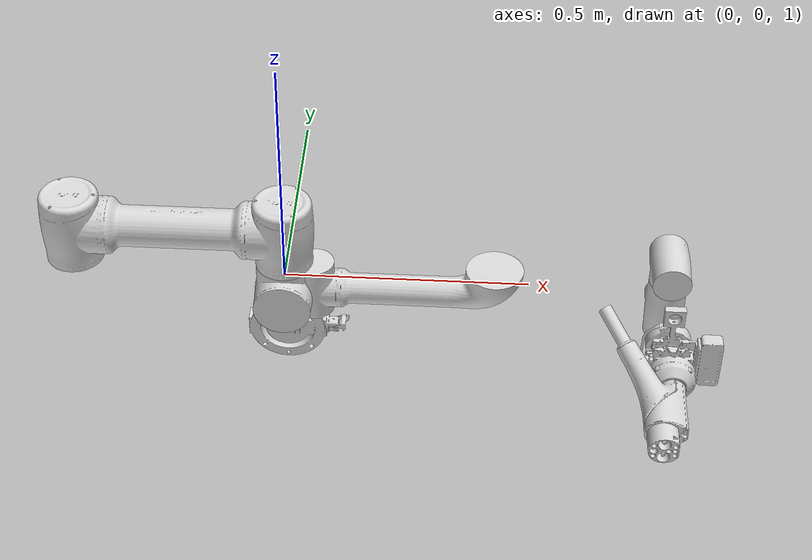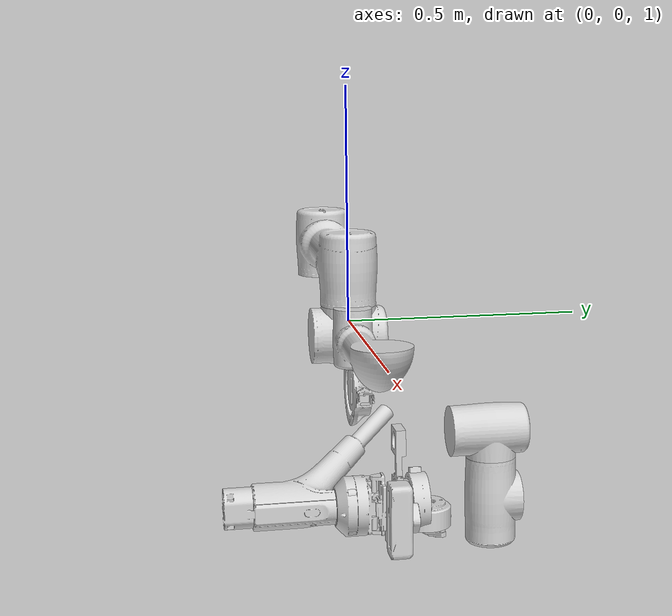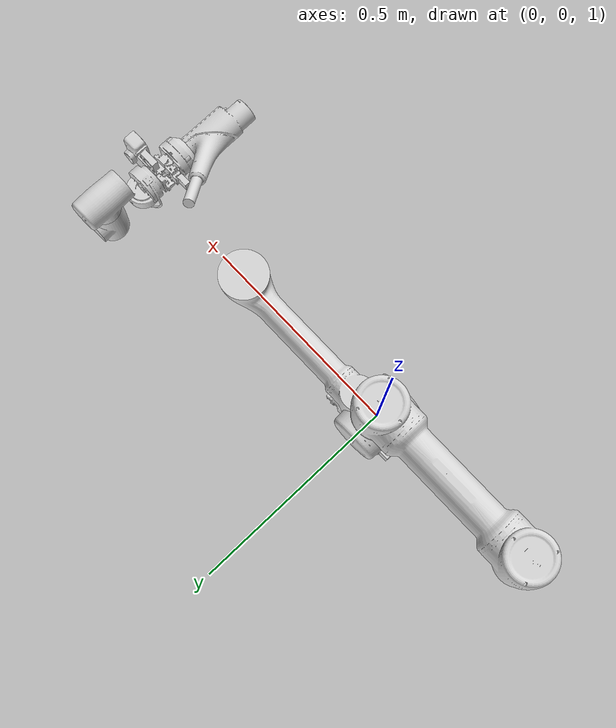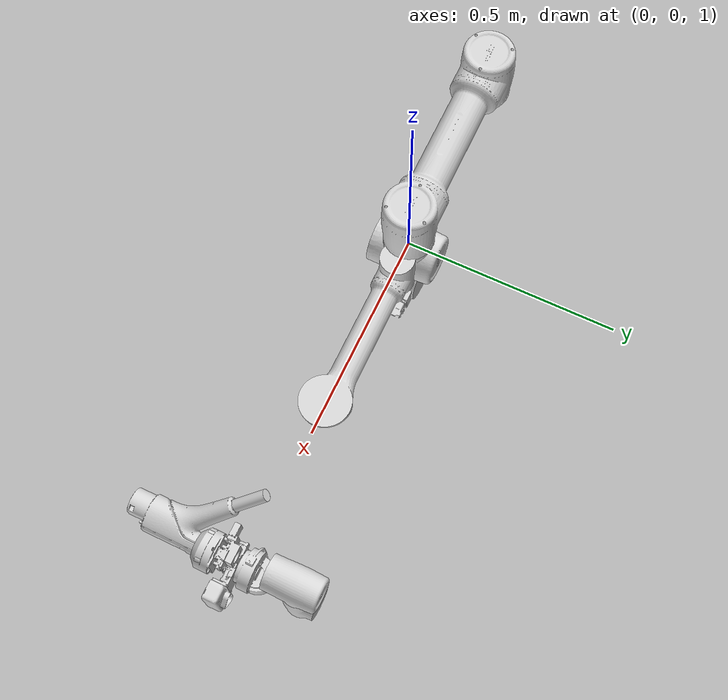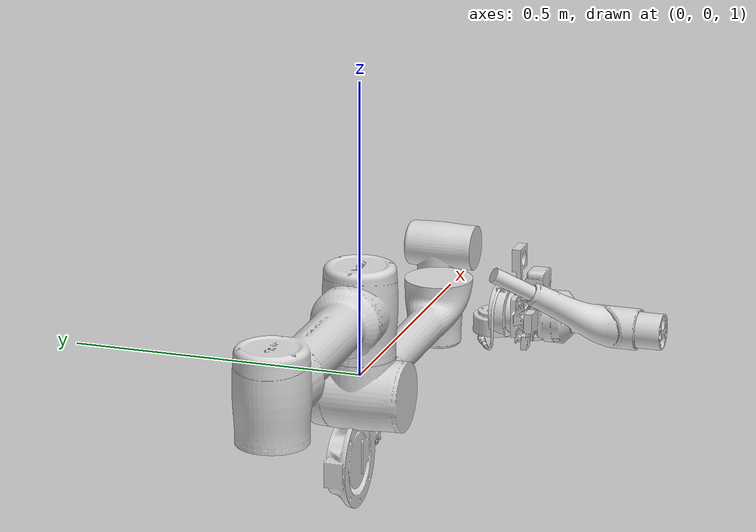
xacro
<?xml version="1.0"?>
<robot xmlns:xacro="http://www.ros.org/wiki/xacro" name="jaka_zu5">
    <xacro:arg name="initial_positions_file" default="initial_positions.yaml" />

    <xacro:include filename="$(find jaka_description)/urdf/gazebo_jaka_zu5.urdf" />

    <gazebo reference="Link_0">
        <self_collide>false</self_collide>
        <gravity>false</gravity>
    </gazebo>
    <gazebo reference="Link_1">
        <material>Gazebo/White</material>
        <self_collide>false</self_collide>
        <gravity>false</gravity>
    </gazebo>
    <gazebo reference="Link_2">
        <material>Gazebo/White</material>
        <gravity>false</gravity>
    </gazebo>
    <gazebo reference="Link_3">
        <material>Gazebo/White</material>
        <gravity>false</gravity>
    </gazebo>
    <gazebo reference="Link_4">
        <material>Gazebo/White</material>
        <gravity>false</gravity>
    </gazebo>
    <gazebo reference="Link_5">
        <material>Gazebo/White</material>
        <gravity>false</gravity>
    </gazebo>
    <gazebo reference="Link_6">
        <material>Gazebo/White</material>
        <gravity>false</gravity>
    </gazebo>

    <gazebo>
        <is_static>true</is_static>
        <self_collide>true</self_collide>
    </gazebo>

    <ros2_control name="GazeboSystem" type="system">
        <hardware>
            <plugin>gazebo_ros2_control/GazeboSystem</plugin>
        </hardware>
        <joint name="joint_1">
            <command_interface name="position"/>
            <state_interface name="position">
                <param name="initial_value">-3.61</param>
            </state_interface>
            <state_interface name="velocity"/>
        </joint>
        <joint name="joint_2">
            <command_interface name="position"/>
            <state_interface name="position">
                <param name="initial_value">1.30</param>
            </state_interface>
            <state_interface name="velocity"/>
        </joint>
        <joint name="joint_3">
            <command_interface name="position"/>
            <state_interface name="position">
                <param name="initial_value">2.33</param>
            </state_interface>
            <state_interface name="velocity"/>
        </joint>
        <joint name="joint_4">
            <command_interface name="position"/>
            <state_interface name="position">
                <param name="initial_value">3.13</param>
            </state_interface>
            <state_interface name="velocity"/>
        </joint>
        <joint name="joint_5">
            <command_interface name="position"/>
            <state_interface name="position">
                <param name="initial_value">-4.90</param>
            </state_interface>
            <state_interface name="velocity"/>
        </joint>
        <joint name="joint_6">
            <command_interface name="position"/>
            <state_interface name="position">
                <param name="initial_value">1.38</param>
            </state_interface>
            <state_interface name="velocity"/>
        </joint>
    </ros2_control>
    <gazebo>
        <plugin filename="libgazebo_ros2_control.so" name="gazebo_ros2_control">
            <parameters>$(find jaka_zu5_moveit_config)/config/ros2_controllers.yaml</parameters>
            <robot_param>robot_description</robot_param>
            <robot_param_node>robot_state_publisher</robot_param_node>
        </plugin>
    </gazebo>
</robot>

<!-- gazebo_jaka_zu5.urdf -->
<robot
  name="jaka_zu5">

  <!-- LINK -->
  <link name="world" />

  <link
    name="Link_0">
    <inertial>
      <origin
        xyz="0.00096371 8.8222E-08 0.019555"
        rpy="0 0 0" />
      <mass
        value="4.0392" />
      <inertia
        ixx="0.0048763"
        ixy="-1.8056E-07"
        ixz="2.5196E-05"
        iyy="0.0068003"
        iyz="-1.7678E-09"
        izz="0.010618" />
    </inertial>
    <visual>
      <origin
        xyz="0 0 0"
        rpy="0 0 0" />
      <geometry>
        <mesh
          filename="file://$(find jaka_description)/meshes/jaka_zu5_meshes/Link_0.STL" />
      </geometry>
      <material
        name="">
        <color
          rgba="0.84706 0.84706 0.84706 1" />
      </material>
    </visual>
    <collision>
      <origin
        xyz="0 0 0"
        rpy="0 0 0" />
      <geometry>
        <mesh
          filename="file://$(find jaka_description)/meshes/jaka_zu5_meshes/Link_0.STL" />
      </geometry>
    </collision>
  </link>
  <link
    name="Link_1">
    <inertial>
      <origin
        xyz="-2.5186E-07 0.0033226 -0.001509"
        rpy="0 0 0" />
      <mass
        value="15.135" />
      <inertia
        ixx="0.044302"
        ixy="1.5349E-07"
        ixz="-6.1966E-07"
        iyy="0.043091"
        iyz="1.4326E-05"
        izz="0.030523" />
    </inertial>
    <visual>
      <origin
        xyz="0 0 0"
        rpy="0 0 0" />
      <geometry>
        <mesh
          filename="file://$(find jaka_description)/meshes/jaka_zu5_meshes/Link_1.STL" />
      </geometry>
      <material
        name="">
        <color
          rgba="0.84706 0.84706 0.84706 1" />
      </material>
    </visual>
    <collision>
      <origin
        xyz="0 0 0"
        rpy="0 0 0" />
      <geometry>
        <mesh
          filename="file://$(find jaka_description)/meshes/jaka_zu5_meshes/Link_1.STL" />
      </geometry>
    </collision>
  </link>

  <link
    name="Link_2">
    <inertial>
      <origin
        xyz="0.215 6.4325E-09 -0.14315"
        rpy="0 0 0" />
      <mass
        value="45.847" />
      <inertia
        ixx="0.10377"
        ixy="-1.3562E-06"
        ixz="2.544E-07"
        iyy="1.5964"
        iyz="2.1509E-08"
        izz="1.5689" />
    </inertial>
    <visual>
      <origin
        xyz="0 0 0"
        rpy="0 0 0" />
      <geometry>
        <mesh
          filename="file://$(find jaka_description)/meshes/jaka_zu5_meshes/Link_2.STL" />
      </geometry>
      <material
        name="">
        <color
          rgba="0.84706 0.84706 0.84706 1" />
      </material>
    </visual>
    <collision>
      <origin
        xyz="0 0 0"
        rpy="0 0 0" />
      <geometry>
        <mesh
          filename="file://$(find jaka_description)/meshes/jaka_zu5_meshes/Link_2.STL" />
      </geometry>
    </collision>
  </link>

  <link
    name="Link_3">
    <inertial>
      <origin
        xyz="0.19087 -1.1862E-05 -0.010587"
        rpy="0 0 0" />
      <mass
        value="18.069" />
      <inertia
        ixx="0.022066"
        ixy="-3.4554E-06"
        ixz="-0.022609"
        iyy="0.41632"
        iyz="1.1508E-08"
        izz="0.41071" />
    </inertial>
    <visual>
      <origin
        xyz="0 0 0"
        rpy="0 0 0" />
      <geometry>
        <mesh
          filename="file://$(find jaka_description)/meshes/jaka_zu5_meshes/Link_3.STL" />
      </geometry>
      <material
        name="">
        <color
          rgba="0.84706 0.84706 0.84706 1" />
      </material>
    </visual>
    <collision>
      <origin
        xyz="0 0 0"
        rpy="0 0 0" />
      <geometry>
        <mesh
          filename="file://$(find jaka_description)/meshes/jaka_zu5_meshes/Link_3.STL" />
      </geometry>
    </collision>
  </link>

  <link
    name="Link_4">
    <inertial>
      <origin
        xyz="-2.1345E-06 -0.0058004 0.0026717"
        rpy="0 0 0" />
      <mass
        value="5.5525" />
      <inertia
        ixx="0.0092564"
        ixy="1.1341E-07"
        ixz="-1.2578E-08"
        iyy="0.0052251"
        iyz="-8.3499E-05"
        izz="0.0089683" />
    </inertial>
    <visual>
      <origin
        xyz="0 0 0"
        rpy="0 0 0" />
      <geometry>
        <mesh
          filename="file://$(find jaka_description)/meshes/jaka_zu5_meshes/Link_4.STL" />
      </geometry>
      <material
        name="">
        <color
          rgba="0.84706 0.84706 0.84706 1" />
      </material>
    </visual>
    <collision>
      <origin
        xyz="0 0 0"
        rpy="0 0 0" />
      <geometry>
        <mesh
          filename="file://$(find jaka_description)/meshes/jaka_zu5_meshes/Link_4.STL" />
      </geometry>
    </collision>
  </link>

  <link
    name="Link_5">
    <inertial>
      <origin
        xyz="-2.0304E-06 -0.0028889 -0.0023424"
        rpy="0 0 0" />
      <mass
        value="6.3339" />
      <inertia
        ixx="0.012993"
        ixy="-1.0764E-07"
        ixz="5.8559E-09"
        iyy="0.0058454"
        iyz="4.5426E-05"
        izz="0.0127" />
    </inertial>
    <visual>
      <origin
        xyz="0 0 0"
        rpy="0 0 0" />
      <geometry>
        <mesh
          filename="file://$(find jaka_description)/meshes/jaka_zu5_meshes/Link_5.STL" />
      </geometry>
      <material
        name="">
        <color
          rgba="0.84706 0.84706 0.84706 1" />
      </material>
    </visual>
    <collision>
      <origin
        xyz="0 0 0"
        rpy="0 0 0" />
      <geometry>
        <mesh
          filename="file://$(find jaka_description)/meshes/jaka_zu5_meshes/Link_5.STL" />
      </geometry>
    </collision>
  </link>

  <link
    name="Link_6">
    <inertial>
      <origin
        xyz="2.7652E-05 -1.3485E-05 -0.021245"
        rpy="0 0 0" />
      <mass
        value="1.4169" />
      <inertia
        ixx="0.00071853"
        ixy="-6.9778E-07"
        ixz="-6.378E-07"
        iyy="0.00072375"
        iyz="8.3072E-07"
        izz="0.0011337" />
    </inertial>
    <visual>
      <origin
        xyz="0 0 0"
        rpy="0 0 0" />
      <geometry>
        <mesh
          filename="file://$(find jaka_description)/meshes/jaka_zu5_meshes/Link_6.STL" />
      </geometry>
      <material
        name="">
        <color
          rgba="0.84706 0.84706 0.84706 1" />
      </material>
    </visual>
    <collision>
      <origin
        xyz="0 0 0"
        rpy="0 0 0" />
      <geometry>
        <mesh
          filename="file://$(find jaka_description)/meshes/jaka_zu5_meshes/Link_6.STL" />
      </geometry>
    </collision>
  </link>

  <link
    name="force_sensor">
    <inertial>
      <origin
        xyz="0 0 0.039"
        rpy="0 0 0" />
      <mass
        value="1.4169" />
      <inertia
        ixx="0.00071853"
        ixy="-6.9778E-07"
        ixz="-6.378E-07"
        iyy="0.00072375"
        iyz="8.3072E-07"
        izz="0.0011337" />
    </inertial>
    <visual>
      <origin
        xyz="0 0 0"
        rpy="0 0 0" />
      <geometry>
        <mesh
          filename="file://$(find jaka_description)/meshes/jaka_zu5_meshes/jaka_force_sensor.stl" />
      </geometry>
      <material
        name="">
        <color
          rgba="0.84706 0.84706 0.84706 1" />
      </material>
    </visual>
    <collision>
      <origin
        xyz="0 0 0"
        rpy="0 0 0" />
      <geometry>
        <mesh
          filename="file://$(find jaka_description)/meshes/jaka_zu5_meshes/jaka_force_sensor.stl" />
      </geometry>
    </collision>
  </link>

  <link
    name="quick_change">
    <inertial>
      <origin
        xyz="0 0 0.07"
        rpy="0 0 0" />
      <mass
        value="1.4169" />
      <inertia
        ixx="0.00071853"
        ixy="-6.9778E-07"
        ixz="-6.378E-07"
        iyy="0.00072375"
        iyz="8.3072E-07"
        izz="0.0011337" />
    </inertial>
    <visual>
      <origin
        xyz="0 0 0"
        rpy="0 0 0" />
      <geometry>
        <mesh
          filename="file://$(find jaka_description)/meshes/jaka_zu5_meshes/cam_qc.STL" />
      </geometry>
      <material
        name="">
        <color
          rgba="0.84706 0.84706 0.84706 1" />
      </material>
    </visual>
    <collision>
      <origin
        xyz="0 0 0"
        rpy="0 0 0" />
      <geometry>
        <mesh
          filename="file://$(find jaka_description)/meshes/jaka_zu5_meshes/cam_qc.STL" />
      </geometry>
    </collision>
  </link>

  <link
    name="with_gun">
    <inertial>
      <origin
        xyz="0 0 0.21"
        rpy="0 0 0" />
      <mass
        value="1.4169" />
      <inertia
        ixx="0.00071853"
        ixy="-6.9778E-07"
        ixz="-6.378E-07"
        iyy="0.00072375"
        iyz="8.3072E-07"
        izz="0.0011337" />
    </inertial>
    <visual>
      <origin
        xyz="0 0 0"
        rpy="0 0 0" />
      <geometry>
        <mesh
          filename="file://$(find jaka_description)/meshes/jaka_zu5_meshes/wi_gun.STL" />
      </geometry>
      <material
        name="">
        <color
          rgba="0.84706 0.84706 0.84706 1" />
      </material>
    </visual>
    <collision>
      <origin
        xyz="0 0 0"
        rpy="0 0 0" />
      <geometry>
        <mesh
          filename="file://$(find jaka_description)/meshes/jaka_zu5_meshes/wi_gun.STL" />
      </geometry>
    </collision>
  </link>

  <!-- JOINT height = 0.85-->
  <joint name="fixed" type="fixed">
     <origin
      xyz="0 0 0.85"
      rpy="0 0 0" />
     <parent link="world"/>
     <child link="Link_0"/>
    <axis
      xyz="0 0 1" />
  </joint>

  <joint
    name="joint_1"
    type="revolute">
    <origin
      xyz="0 0 0.12015"
      rpy="0 0 0" />
    <parent
      link="Link_0" />
    <child
      link="Link_1" />
    <axis
      xyz="0 0 1" />
    <limit
      lower="-6.28"
      upper="6.28"
      effort="2000"
      velocity="3.14" />
    <initial_position
      value="-3.61"/>
  </joint>

  <joint
    name="joint_2"
    type="revolute">
    <origin
      xyz="0 0 0"
      rpy="1.5708 0 0" />
    <parent
      link="Link_1" />
    <child
      link="Link_2" />
    <axis
      xyz="0 0 1" />
    <limit
      lower="-1.48"
      upper="4.62"
      effort="5000"
      velocity="3.14" />
    <initial_position
      value="1.30"/>
  </joint>

  <joint
    name="joint_3"
    type="revolute">
    <origin
      xyz="0.43 0 0"
      rpy="0 0 0" />
    <parent
      link="Link_2" />
    <child
      link="Link_3" />
    <axis
      xyz="0 0 1" />
    <limit
      lower="-3.05"
      upper="3.05"
      effort="5000"
      velocity="3.14" />
    <initial_position
      value="2.33"/>
  </joint>

  <joint
    name="joint_4"
    type="revolute">
    <origin
      xyz="0.3685 -1.185E-05 -0.114"
      rpy="0 0 0" />
    <parent
      link="Link_3" />
    <child
      link="Link_4" />
    <axis
      xyz="0 0 1" />
    <limit
      lower="-1.48"
      upper="4.62"
      effort="2000"
      velocity="3.14" />
    <initial_position
      value="3.13"/>
  </joint>

  <joint
    name="joint_5"
    type="revolute">
    <origin
      xyz="0 -0.1135 0"
      rpy="1.5708 0 0" />
    <parent
      link="Link_4" />
    <child
      link="Link_5" />
    <axis
      xyz="0 0 1" />
    <limit
      lower="-6.28"
      upper="6.28"
      effort="3000"
      velocity="3.14" />
    <initial_position
      value="-4.90"/>
  </joint>

  <joint
    name="joint_6"
    type="revolute">
    <origin
      xyz="0 0.107 0"
      rpy="-1.5708 0 0" />
    <parent
      link="Link_5" />
    <child
      link="Link_6" />
    <axis
      xyz="0 0 1" />
    <limit
      lower="-6.28"
      upper="6.28"
      effort="1000"
      velocity="3.14" />
    <initial_position
      value="1.38"/>
  </joint>

  <joint
    name="joint_sensor"
    type="fixed">
    <origin
      xyz="0 0 0"
      rpy="0 0 0" />
    <parent
      link="Link_6" />
    <child
      link="force_sensor" />
    <axis
      xyz="0 0 1" />
  </joint>

  <joint
    name="joint_quick_change"
    type="fixed">
    <origin
      xyz="0 0 0.039"
      rpy="0 0 0" />
    <parent
      link="force_sensor" />
    <child
      link="quick_change" />
    <axis
      xyz="0 0 1" />
  </joint>

  <joint
    name="joint_with_gun"
    type="fixed">
    <origin
      xyz="0 0 0.065"
      rpy="0 0 0" />
    <parent
      link="quick_change" />
    <child
      link="with_gun" />
    <axis
      xyz="0 0 1" />
  </joint>

  <transmission name="trans_joint_1">
        <type>transmission_interface/SimpleTransmission</type>
        <joint name="joint_1">
            <hardwareInterface>hardware_interface/PositionJointInterface</hardwareInterface>
        </joint>
        <actuator name="joint_1_motor">
            <hardwareInterface>hardware_interface/PositionJointInterface</hardwareInterface>
            <mechanicalReduction>1</mechanicalReduction>
        </actuator>
    </transmission>
    <transmission name="trans_joint_2">
        <type>transmission_interface/SimpleTransmission</type>
        <joint name="joint_2">
            <hardwareInterface>hardware_interface/PositionJointInterface</hardwareInterface>
        </joint>
        <actuator name="joint_2_motor">
            <hardwareInterface>hardware_interface/PositionJointInterface</hardwareInterface>
            <mechanicalReduction>1</mechanicalReduction>
        </actuator>
    </transmission>
    <transmission name="trans_joint_3">
        <type>transmission_interface/SimpleTransmission</type>
        <joint name="joint_3">
            <hardwareInterface>hardware_interface/PositionJointInterface</hardwareInterface>
        </joint>
        <actuator name="joint_3_motor">
            <hardwareInterface>hardware_interface/PositionJointInterface</hardwareInterface>
            <mechanicalReduction>1</mechanicalReduction>
        </actuator>
    </transmission>
    <transmission name="trans_joint_4">
        <type>transmission_interface/SimpleTransmission</type>
        <joint name="joint_4">
            <hardwareInterface>hardware_interface/PositionJointInterface</hardwareInterface>
        </joint>
        <actuator name="joint_4_motor">
            <hardwareInterface>hardware_interface/PositionJointInterface</hardwareInterface>
            <mechanicalReduction>1</mechanicalReduction>
        </actuator>
    </transmission>
    <transmission name="trans_joint_5">
        <type>transmission_interface/SimpleTransmission</type>
        <joint name="joint_5">
            <hardwareInterface>hardware_interface/PositionJointInterface</hardwareInterface>
        </joint>
        <actuator name="joint_5_motor">
            <hardwareInterface>hardware_interface/PositionJointInterface</hardwareInterface>
            <mechanicalReduction>1</mechanicalReduction>
        </actuator>
    </transmission>
    <transmission name="trans_joint_6">
        <type>transmission_interface/SimpleTransmission</type>
        <joint name="joint_6">
            <hardwareInterface>hardware_interface/PositionJointInterface</hardwareInterface>
        </joint>
        <actuator name="joint_6_motor">
            <hardwareInterface>hardware_interface/PositionJointInterface</hardwareInterface>
            <mechanicalReduction>1</mechanicalReduction>
        </actuator>
    </transmission>
</robot>
